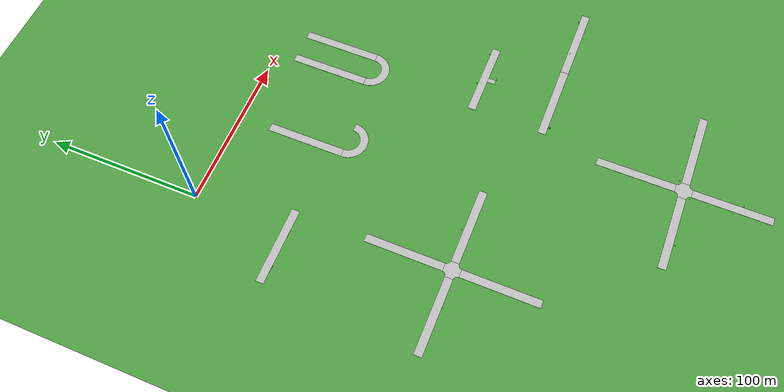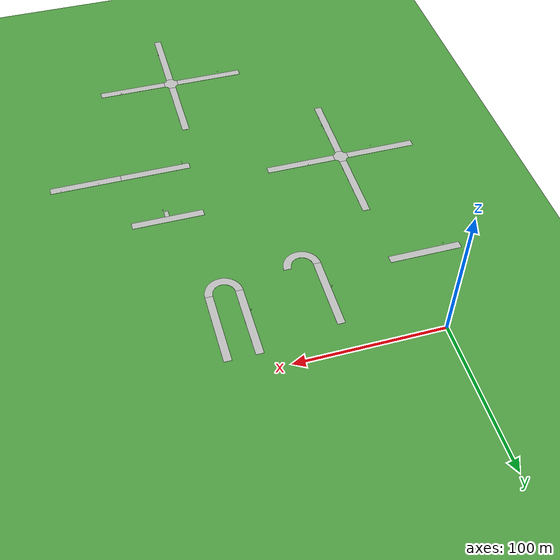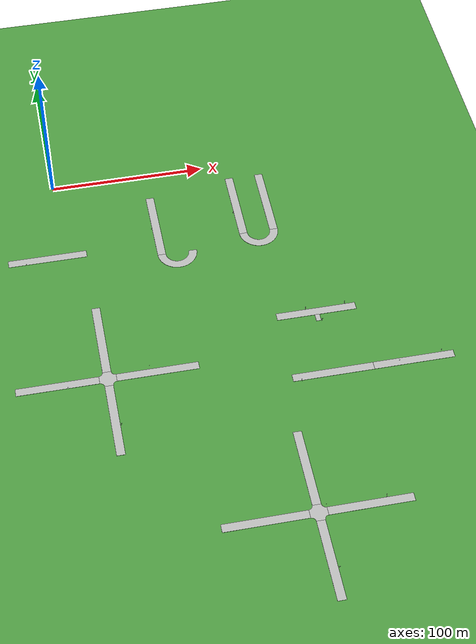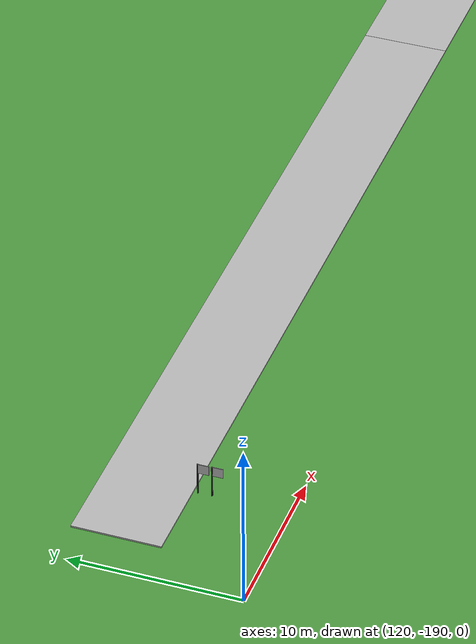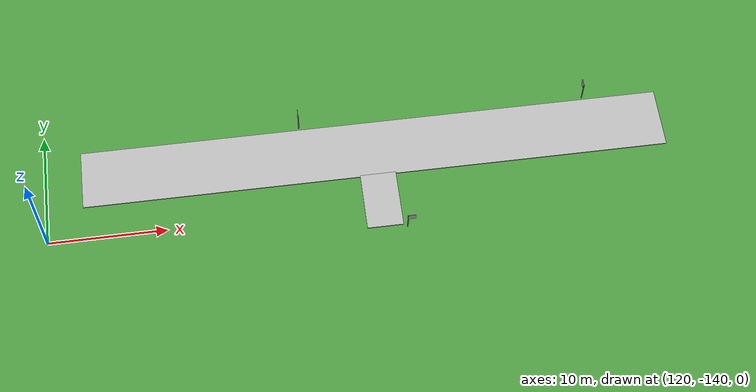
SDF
<sdf version="1.6">
 <world name="default">
  <light name="sun" type="directional">
   <pose>0 0 10 0 -0 0</pose>
   <diffuse>0.8 0.8 0.8 1</diffuse>
   <specular>0.2 0.2 0.2 1</specular>
   <attenuation>
    <range>1000</range>
    <constant>0.9</constant>
    <linear>0.01</linear>
    <quadratic>0.001</quadratic>
   </attenuation>
   <direction>-0.5 0.1 -0.9</direction>
  </light>
  <model name="ground_plane">
   <pose>0 0 0 0 -0 3.14159</pose>
   <static>1</static>
   <link name="link">
    <collision name="collision">
     <geometry><plane><normal>0 0 1</normal><size>100 100</size></plane></geometry>
     <surface><friction><ode><mu>100</mu><mu2>50</mu2></ode></friction></surface>
    </collision>
    <visual name="visual">
     <cast_shadows>0</cast_shadows>
     <geometry><plane><normal>0 0 1</normal><size>10000 10000</size></plane></geometry>
     <material>
      <script>
       <uri>model://grass_background/materials/scripts</uri>
       <uri>model://grass_background/materials/textures</uri>
       <name>GrassBackground</name>
      </script>
     </material>
    </visual>
   </link>
  </model>
  <gravity>0 0 -9.8</gravity>
  <magnetic_field>6e-06 2.3e-05 -4.2e-05</magnetic_field>
  <atmosphere type="adiabatic"/>
  <physics name="default_physics" default="0" type="ode">
   <max_step_size>0.001</max_step_size>
   <real_time_factor>1</real_time_factor>
   <real_time_update_rate>1000</real_time_update_rate>
  </physics>
  <scene><ambient>0.4 0.4 0.4 1</ambient><background>0.7 0.7 0.7 1</background><shadows>1</shadows></scene>
  <spherical_coordinates>
   <surface_model>EARTH_WGS84</surface_model>
   <latitude_deg>0</latitude_deg>
   <longitude_deg>0</longitude_deg>
   <elevation>0</elevation>
   <heading_deg>0</heading_deg>
  </spherical_coordinates>
  <model name="straight_road_50_0">
   <pose>-10.31 -60.5989 0 0 -0 0</pose>
   <static>1</static>
   <link name="link">
    <inertial>
     <mass>1</mass>
     <inertia><ixx>1</ixx><iyy>1</iyy><izz>1</izz><ixy>0</ixy><ixz>0</ixz><iyz>0</iyz></inertia>
    </inertial>
    <visual name="visual">
     <geometry><mesh><uri>model://straight_road_50/meshes/straight_road_50.dae</uri></mesh></geometry>
    </visual>
    <collision name="collision">
     <geometry><mesh><uri>model://straight_road_50/meshes/straight_road_50.dae</uri></mesh></geometry>
    </collision>
   </link>
  </model>
  <model name="q2_flag">
   <pose>-24.0308 -63.7181 0 0 -0 0</pose>
   <static>1</static>
   <link name="link">
    <visual name="visual">
     <geometry><mesh><uri>model://start_flag_q2/meshes/start_flag.dae</uri></mesh></geometry>
    </visual>
   </link>
  </model>
  <model name="straight_road_50">
   <pose>-15.849 -161.66 0 0 -0 0</pose>
   <static>1</static>
   <link name="link">
    <inertial>
     <mass>1</mass>
     <inertia><ixx>1</ixx><iyy>1</iyy><izz>1</izz><ixy>0</ixy><ixz>0</ixz><iyz>0</iyz></inertia>
    </inertial>
    <visual name="visual">
     <geometry><mesh><uri>model://straight_road_50/meshes/straight_road_50.dae</uri></mesh></geometry>
    </visual>
    <collision name="collision">
     <geometry><mesh><uri>model://straight_road_50/meshes/straight_road_50.dae</uri></mesh></geometry>
    </collision>
   </link>
  </model>
  <model name="straight_road_50_1">
   <pose>14.3377 -131.483 0 0 0 -1.5707</pose>
   <static>1</static>
   <link name="link">
    <inertial>
     <mass>1</mass>
     <inertia><ixx>1</ixx><iyy>1</iyy><izz>1</izz><ixy>0</ixy><ixz>0</ixz><iyz>0</iyz></inertia>
    </inertial>
    <visual name="visual">
     <geometry><mesh><uri>model://straight_road_50/meshes/straight_road_50.dae</uri></mesh></geometry>
    </visual>
    <collision name="collision">
     <geometry><mesh><uri>model://straight_road_50/meshes/straight_road_50.dae</uri></mesh></geometry>
    </collision>
   </link>
  </model>
  <model name="straight_road_50_2">
   <pose>44.5278 -161.67 0 0 -0 0</pose>
   <static>1</static>
   <link name="link">
    <inertial>
     <mass>1</mass>
     <inertia><ixx>1</ixx><iyy>1</iyy><izz>1</izz><ixy>0</ixy><ixz>0</ixz><iyz>0</iyz></inertia>
    </inertial>
    <visual name="visual">
     <geometry><mesh><uri>model://straight_road_50/meshes/straight_road_50.dae</uri></mesh></geometry>
    </visual>
    <collision name="collision">
     <geometry><mesh><uri>model://straight_road_50/meshes/straight_road_50.dae</uri></mesh></geometry>
    </collision>
   </link>
  </model>
  <model name="straight_road_50_3">
   <pose>14.3042 -191.84 0 0 -0 1.5707</pose>
   <static>1</static>
   <link name="link">
    <inertial>
     <mass>1</mass>
     <inertia><ixx>1</ixx><iyy>1</iyy><izz>1</izz><ixy>0</ixy><ixz>0</ixz><iyz>0</iyz></inertia>
    </inertial>
    <visual name="visual">
     <geometry><mesh><uri>model://straight_road_50/meshes/straight_road_50.dae</uri></mesh></geometry>
    </visual>
    <collision name="collision">
     <geometry><mesh><uri>model://straight_road_50/meshes/straight_road_50.dae</uri></mesh></geometry>
    </collision>
   </link>
  </model>
  <model name="q3_flag">
   <pose>-9.86683 -164.687 0 0 -0 0</pose>
   <static>1</static>
   <link name="link">
    <visual name="visual">
     <geometry><mesh><uri>model://start_flag_q3/meshes/start_flag.dae</uri></mesh></geometry>
    </visual>
   </link>
  </model>
  <model name="q4_flag">
   <pose>40.0653 -158.437 0 0 -0 3.14159</pose>
   <static>1</static>
   <link name="link">
    <visual name="visual">
     <geometry><mesh><uri>model://start_flag_q4/meshes/start_flag.dae</uri></mesh></geometry>
    </visual>
   </link>
  </model>
  <model name="q5_flag">
   <pose>17.4518 -196.097 0 0 -0 1.5707</pose>
   <static>1</static>
   <link name="link">
    <visual name="visual">
     <geometry><mesh><uri>model://start_flag_q5/meshes/start_flag.dae</uri></mesh></geometry>
    </visual>
   </link>
  </model>
  <model name="straight_road_50_4">
   <pose>86.6555 -275.065 0 0 -0 0</pose>
   <static>1</static>
   <link name="link">
    <inertial>
     <mass>1</mass>
     <inertia><ixx>1</ixx><iyy>1</iyy><izz>1</izz><ixy>0</ixy><ixz>0</ixz><iyz>0</iyz></inertia>
    </inertial>
    <visual name="visual">
     <geometry><mesh><uri>model://straight_road_50/meshes/straight_road_50.dae</uri></mesh></geometry>
    </visual>
    <collision name="collision">
     <geometry><mesh><uri>model://straight_road_50/meshes/straight_road_50.dae</uri></mesh></geometry>
    </collision>
   </link>
  </model>
  <model name="straight_road_50_5">
   <pose>116.842 -244.87 0 0 0 -1.5707</pose>
   <static>1</static>
   <link name="link">
    <inertial>
     <mass>1</mass>
     <inertia><ixx>1</ixx><iyy>1</iyy><izz>1</izz><ixy>0</ixy><ixz>0</ixz><iyz>0</iyz></inertia>
    </inertial>
    <visual name="visual">
     <geometry><mesh><uri>model://straight_road_50/meshes/straight_road_50.dae</uri></mesh></geometry>
    </visual>
    <collision name="collision">
     <geometry><mesh><uri>model://straight_road_50/meshes/straight_road_50.dae</uri></mesh></geometry>
    </collision>
   </link>
  </model>
  <model name="straight_road_50_6">
   <pose>116.825 -305.238 0 0 -0 1.5707</pose>
   <static>1</static>
   <link name="link">
    <inertial>
     <mass>1</mass>
     <inertia><ixx>1</ixx><iyy>1</iyy><izz>1</izz><ixy>0</ixy><ixz>0</ixz><iyz>0</iyz></inertia>
    </inertial>
    <visual name="visual">
     <geometry><mesh><uri>model://straight_road_50/meshes/straight_road_50.dae</uri></mesh></geometry>
    </visual>
    <collision name="collision">
     <geometry><mesh><uri>model://straight_road_50/meshes/straight_road_50.dae</uri></mesh></geometry>
    </collision>
   </link>
  </model>
  <model name="straight_road_50_7">
   <pose>147.022 -275.063 0 0 -0 3.14159</pose>
   <static>1</static>
   <link name="link">
    <inertial>
     <mass>1</mass>
     <inertia><ixx>1</ixx><iyy>1</iyy><izz>1</izz><ixy>0</ixy><ixz>0</ixz><iyz>0</iyz></inertia>
    </inertial>
    <visual name="visual">
     <geometry><mesh><uri>model://straight_road_50/meshes/straight_road_50.dae</uri></mesh></geometry>
    </visual>
    <collision name="collision">
     <geometry><mesh><uri>model://straight_road_50/meshes/straight_road_50.dae</uri></mesh></geometry>
    </collision>
   </link>
  </model>
  <model name="one_way_right">
   <pose>121.984 -270.917 0 0 -0 1.5707</pose>
   <static>1</static>
   <link name="link">
    <inertial>
     <mass>1</mass>
     <inertia><ixx>1</ixx><iyy>1</iyy><izz>1</izz><ixy>0</ixy><ixz>0</ixz><iyz>0</iyz></inertia>
    </inertial>
    <visual name="visual">
     <geometry><mesh><uri>model://one_way_right/meshes/one_way_right.dae</uri></mesh></geometry>
    </visual>
    <collision name="collision">
     <geometry><mesh><uri>model://one_way_right/meshes/one_way_right.dae</uri></mesh></geometry>
    </collision>
   </link>
  </model>
  <model name="one_way_left">
   <pose>111.767 -279.232 0 0 0 -1.5707</pose>
   <static>1</static>
   <link name="link">
    <inertial>
     <mass>1</mass>
     <inertia><ixx>1</ixx><iyy>1</iyy><izz>1</izz><ixy>0</ixy><ixz>0</ixz><iyz>0</iyz></inertia>
    </inertial>
    <visual name="visual">
     <geometry><mesh><uri>model://one_way_left/meshes/one_way_left.dae</uri></mesh></geometry>
    </visual>
    <collision name="collision">
     <geometry><mesh><uri>model://one_way_left/meshes/one_way_left.dae</uri></mesh></geometry>
    </collision>
   </link>
  </model>
  <model name="f1_flag">
   <pose>119.626 -311.155 0 0 -0 1.5707</pose>
   <static>1</static>
   <link name="link">
    <visual name="visual">
     <geometry><mesh><uri>model://start_flag_f1/meshes/start_flag.dae</uri></mesh></geometry>
    </visual>
   </link>
  </model>
  <model name="f2_flag">
   <pose>78.3072 -278.113 0 0 -0 0</pose>
   <static>1</static>
   <link name="link">
    <visual name="visual">
     <geometry><mesh><uri>model://start_flag_f2/meshes/start_flag.dae</uri></mesh></geometry>
    </visual>
   </link>
  </model>
  <model name="f3_flag">
   <pose>156.66 -272.173 0 0 -0 3.14159</pose>
   <static>1</static>
   <link name="link">
    <visual name="visual">
     <geometry><mesh><uri>model://start_flag_f3/meshes/start_flag.dae</uri></mesh></geometry>
    </visual>
   </link>
  </model>
  <model name="road_intersection">
   <pose>116.839 -275.052 0 0 -0 0</pose>
   <static>1</static>
   <link name="link">
    <visual name="visual">
     <geometry><mesh><uri>model://road_intersection/meshes/road_intersection.dae</uri></mesh></geometry>
    </visual>
    <collision name="collision">
     <geometry><mesh><uri>model://road_intersection/meshes/road_intersection.dae</uri></mesh></geometry>
    </collision>
   </link>
  </model>
  <model name="road_intersection_0">
   <pose>14.3341 -161.671 0 0 -0 0</pose>
   <static>1</static>
   <link name="link">
    <visual name="visual">
     <geometry><mesh><uri>model://road_intersection/meshes/road_intersection.dae</uri></mesh></geometry>
    </visual>
    <collision name="collision">
     <geometry><mesh><uri>model://road_intersection/meshes/road_intersection.dae</uri></mesh></geometry>
    </collision>
   </link>
  </model>
  <model name="curved_road_10">
   <pose>126.466 -62.1707 0 0 -0 0</pose>
   <static>1</static>
   <link name="link">
    <inertial>
     <mass>1</mass>
     <inertia><ixx>1</ixx><iyy>1</iyy><izz>1</izz><ixy>0</ixy><ixz>0</ixz><iyz>0</iyz></inertia>
    </inertial>
    <visual name="visual">
     <geometry><mesh><uri>model://curved_road_10/meshes/curved_road_10.dae</uri></mesh></geometry>
    </visual>
    <collision name="collision">
     <geometry><mesh><uri>model://curved_road_10/meshes/curved_road_10.dae</uri></mesh></geometry>
    </collision>
   </link>
  </model>
  <model name="straight_road_50_8">
   <pose>116.469 -37.2661 0 0 0 -1.5707</pose>
   <static>1</static>
   <link name="link">
    <inertial>
     <mass>1</mass>
     <inertia><ixx>1</ixx><iyy>1</iyy><izz>1</izz><ixy>0</ixy><ixz>0</ixz><iyz>0</iyz></inertia>
    </inertial>
    <visual name="visual">
     <geometry><mesh><uri>model://straight_road_50/meshes/straight_road_50.dae</uri></mesh></geometry>
    </visual>
    <collision name="collision">
     <geometry><mesh><uri>model://straight_road_50/meshes/straight_road_50.dae</uri></mesh></geometry>
    </collision>
   </link>
  </model>
  <model name="straight_road_50_9">
   <pose>136.465 -37.2189 0 0 -0 1.5707</pose>
   <static>1</static>
   <link name="link">
    <inertial>
     <mass>1</mass>
     <inertia><ixx>1</ixx><iyy>1</iyy><izz>1</izz><ixy>0</ixy><ixz>0</ixz><iyz>0</iyz></inertia>
    </inertial>
    <visual name="visual">
     <geometry><mesh><uri>model://straight_road_50/meshes/straight_road_50.dae</uri></mesh></geometry>
    </visual>
    <collision name="collision">
     <geometry><mesh><uri>model://straight_road_50/meshes/straight_road_50.dae</uri></mesh></geometry>
    </collision>
   </link>
  </model>
  <model name="f11_flag">
   <pose>113.502 -44.714 0 0 0 -1.5707</pose>
   <static>1</static>
   <link name="link">
    <visual name="visual">
     <geometry><mesh><uri>model://start_flag_f11/meshes/start_flag.dae</uri></mesh></geometry>
    </visual>
   </link>
  </model>
  <model name="straight_road_50_10">
   <pose>61.7605 -45.4138 0 0 0 -1.5707</pose>
   <static>1</static>
   <link name="link">
    <inertial>
     <mass>1</mass>
     <inertia><ixx>1</ixx><iyy>1</iyy><izz>1</izz><ixy>0</ixy><ixz>0</ixz><iyz>0</iyz></inertia>
    </inertial>
    <visual name="visual">
     <geometry><mesh><uri>model://straight_road_50/meshes/straight_road_50.dae</uri></mesh></geometry>
    </visual>
    <collision name="collision">
     <geometry><mesh><uri>model://straight_road_50/meshes/straight_road_50.dae</uri></mesh></geometry>
    </collision>
   </link>
  </model>
  <model name="curved_road_10_0">
   <pose>71.7601 -70.3982 0 0 -0 0</pose>
   <static>1</static>
   <link name="link">
    <inertial>
     <mass>1</mass>
     <inertia><ixx>1</ixx><iyy>1</iyy><izz>1</izz><ixy>0</ixy><ixz>0</ixz><iyz>0</iyz></inertia>
    </inertial>
    <visual name="visual">
     <geometry><mesh><uri>model://curved_road_10/meshes/curved_road_10.dae</uri></mesh></geometry>
    </visual>
    <collision name="collision">
     <geometry><mesh><uri>model://curved_road_10/meshes/curved_road_10.dae</uri></mesh></geometry>
    </collision>
   </link>
  </model>
  <model name="f10_flag">
   <pose>58.9213 -48.9363 0 0 0 -1.5707</pose>
   <static>1</static>
   <link name="link">
    <visual name="visual">
     <geometry><mesh><uri>model://start_flag_f10/meshes/start_flag.dae</uri></mesh></geometry>
    </visual>
   </link>
  </model>
  <model name="straight_road_50_11">
   <pose>148.037 -134.421 0 0 -0 0</pose>
   <static>1</static>
   <link name="link">
    <inertial>
     <mass>1</mass>
     <inertia><ixx>1</ixx><iyy>1</iyy><izz>1</izz><ixy>0</ixy><ixz>0</ixz><iyz>0</iyz></inertia>
    </inertial>
    <visual name="visual">
     <geometry><mesh><uri>model://straight_road_50/meshes/straight_road_50.dae</uri></mesh></geometry>
    </visual>
    <collision name="collision">
     <geometry><mesh><uri>model://straight_road_50/meshes/straight_road_50.dae</uri></mesh></geometry>
    </collision>
   </link>
  </model>
  <model name="parking_space">
   <pose>148.041 -139.393 0 0 -0 0</pose>
   <static>1</static>
   <link name="link">
    <inertial>
     <mass>1</mass>
     <inertia><ixx>1</ixx><iyy>1</iyy><izz>1</izz><ixy>0</ixy><ixz>0</ixz><iyz>0</iyz></inertia>
    </inertial>
    <visual name="visual">
     <geometry><mesh><uri>model://parking_space/meshes/parking_space.dae</uri></mesh></geometry>
    </visual>
    <collision name="collision">
     <geometry><mesh><uri>model://parking_space/meshes/parking_space.dae</uri></mesh></geometry>
    </collision>
   </link>
  </model>
  <model name="f5_flag">
   <pose>141.838 -131.584 0 0 -0 3.14159</pose>
   <static>1</static>
   <link name="link">
    <visual name="visual">
     <geometry><mesh><uri>model://start_flag_f5/meshes/start_flag.dae</uri></mesh></geometry>
    </visual>
   </link>
  </model>
  <model name="f4_flag">
   <pose>149.856 -142.141 0 0 -0 1.5707</pose>
   <static>1</static>
   <link name="link">
    <visual name="visual">
     <geometry><mesh><uri>model://start_flag_f4/meshes/start_flag.dae</uri></mesh></geometry>
    </visual>
   </link>
  </model>
  <model name="f6_flag">
   <pose>166.651 -131.612 0 0 -0 3.14159</pose>
   <static>1</static>
   <link name="link">
    <visual name="visual">
     <geometry><mesh><uri>model://start_flag_f6/meshes/start_flag.dae</uri></mesh></geometry>
    </visual>
   </link>
  </model>
  <model name="straight_road_50_12">
   <pose>147.599 -181.824 0 0 -0 0</pose>
   <static>1</static>
   <link name="link">
    <inertial>
     <mass>1</mass>
     <inertia><ixx>1</ixx><iyy>1</iyy><izz>1</izz><ixy>0</ixy><ixz>0</ixz><iyz>0</iyz></inertia>
    </inertial>
    <visual name="visual">
     <geometry><mesh><uri>model://straight_road_50/meshes/straight_road_50.dae</uri></mesh></geometry>
    </visual>
    <collision name="collision">
     <geometry><mesh><uri>model://straight_road_50/meshes/straight_road_50.dae</uri></mesh></geometry>
    </collision>
   </link>
  </model>
  <model name="f7_flag">
   <pose>127.511 -184.684 0 0 -0 0</pose>
   <static>1</static>
   <link name="link">
    <visual name="visual">
     <geometry><mesh><uri>model://start_flag_f7/meshes/start_flag.dae</uri></mesh></geometry>
    </visual>
   </link>
  </model>
  <model name="f8_flag">
   <pose>127.54 -185.487 0 0 -0 0</pose>
   <static>1</static>
   <link name="link">
    <visual name="visual">
     <geometry><mesh><uri>model://start_flag_f8/meshes/start_flag.dae</uri></mesh></geometry>
    </visual>
   </link>
  </model>
  <model name="straight_road_50_13">
   <pose>197.537 -181.821 0 0 -0 0</pose>
   <static>1</static>
   <link name="link">
    <inertial>
     <mass>1</mass>
     <inertia><ixx>1</ixx><iyy>1</iyy><izz>1</izz><ixy>0</ixy><ixz>0</ixz><iyz>0</iyz></inertia>
    </inertial>
    <visual name="visual">
     <geometry><mesh><uri>model://straight_road_50/meshes/straight_road_50.dae</uri></mesh></geometry>
    </visual>
    <collision name="collision">
     <geometry><mesh><uri>model://straight_road_50/meshes/straight_road_50.dae</uri></mesh></geometry>
    </collision>
   </link>
  </model>
  <model name="f12_flag">
   <pose>215.242 -178.95 0 0 -0 3.14159</pose>
   <static>1</static>
   <link name="link">
    <visual name="visual">
     <geometry><mesh><uri>model://start_flag_f12/meshes/start_flag.dae</uri></mesh></geometry>
    </visual>
   </link>
  </model>
  <model name="pothole">
   <pose>188.788 -180.568 0 0 -0 0</pose>
   <static>1</static>
   <link name="link">
    <inertial>
     <mass>1</mass>
     <inertia><ixx>1</ixx><iyy>1</iyy><izz>1</izz><ixy>0</ixy><ixz>0</ixz><iyz>0</iyz></inertia>
    </inertial>
    <visual name="visual"><geometry><mesh><uri>model://pothole/meshes/pothole.dae</uri></mesh></geometry></visual>
    <collision name="collision">
     <geometry><mesh><uri>model://pothole/meshes/pothole.dae</uri></mesh></geometry>
    </collision>
   </link>
  </model>
 </world>
</sdf>
